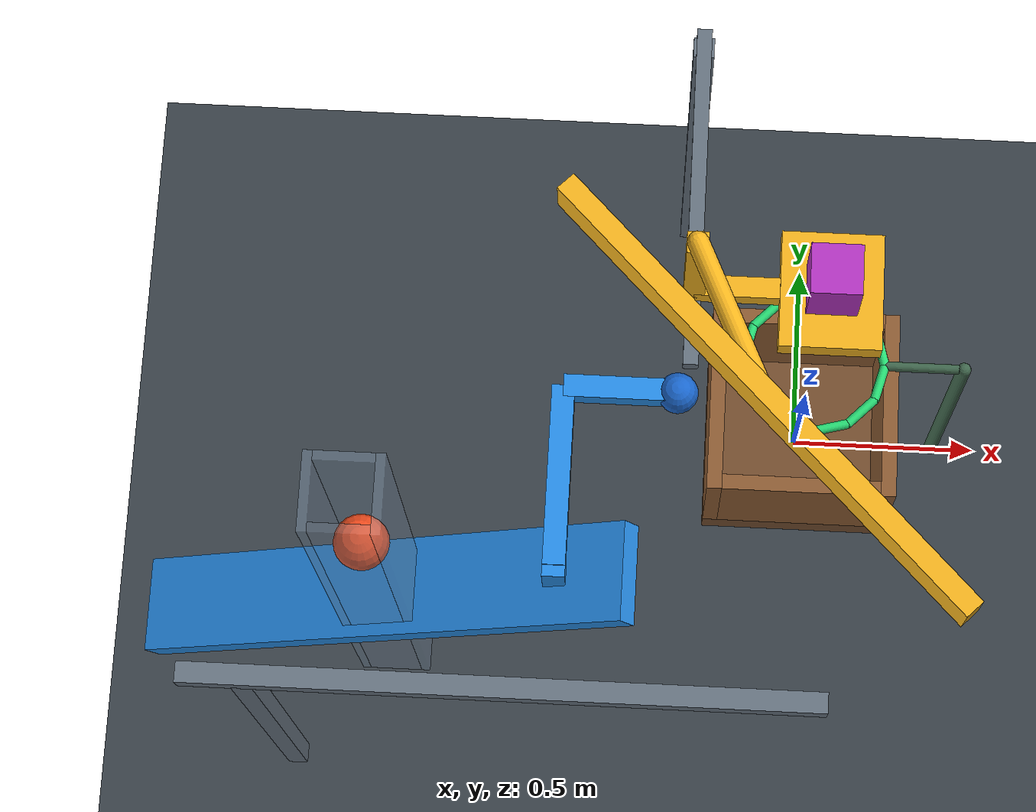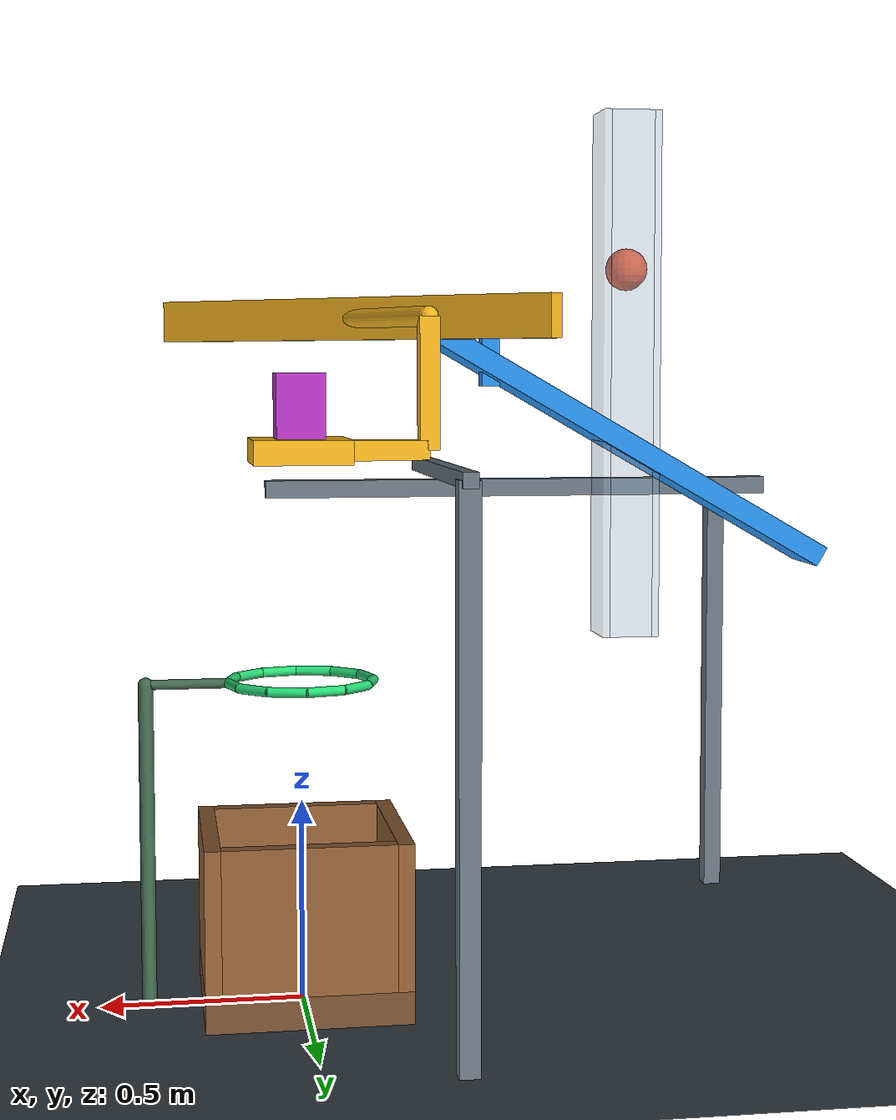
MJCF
<mujoco model="gravity_slide_release">
  <compiler angle="degree"/>
  <option timestep="0.002" gravity="0 0 -9.81" integrator="implicitfast" iterations="80" cone="elliptic"/>
  <size njmax="2000" nconmax="300"/>

  <visual>
    <headlight ambient="0.35 0.35 0.35" diffuse="0.7 0.7 0.7" specular="0.2 0.2 0.2"/>
  </visual>

  <worldbody>
    <light name="overhead" pos="-0.5 -1 4" dir="0 0 -1"/>
    <geom name="floor" type="plane" size="4 4 0.1" rgba="0.22 0.25 0.28 1" friction="0.8 0.01 0.002"/>

    <!-- The center falls exactly 0.4 m before touching the inclined ramp. -->
    <body name="ball" pos="-1 -0.75 1.853923048">
      <freejoint name="ball_free"/>
      <geom name="ball_sphere" type="sphere" size="0.06" mass="6" rgba="0.95 0.3 0.12 1" contype="1" conaffinity="3" condim="6" friction="0.02 0.02 0.005" solref="0.012 1"/>
    </body>

    <!-- These walls contact only the ball, not the translating ramp. -->
    <body name="ball_chute" pos="-1 -0.75 1.55">
      <geom name="ball_chute_left" type="box" pos="-0.072 0 0" size="0.01 0.082 0.75" rgba="0.55 0.65 0.75 0.35" contype="2" conaffinity="0" condim="6" friction="0.005 0.005 0.002"/>
      <geom name="ball_chute_right" type="box" pos="0.072 0 0" size="0.01 0.082 0.75" rgba="0.55 0.65 0.75 0.35" contype="2" conaffinity="0" condim="6" friction="0.005 0.005 0.002"/>
      <geom name="ball_chute_front" type="box" pos="0 -0.072 0" size="0.062 0.01 0.75" rgba="0.55 0.65 0.75 0.25" contype="2" conaffinity="0" condim="6" friction="0.005 0.005 0.002"/>
      <geom name="ball_chute_back" type="box" pos="0 0.072 0" size="0.062 0.01 0.75" rgba="0.55 0.65 0.75 0.35" contype="2" conaffinity="0" condim="6" friction="0.005 0.005 0.002"/>
    </body>

    <!-- Gravity on the confined ball drives this rising ramp toward +x. -->
    <body name="slider1" pos="-1 -0.75 1.35">
      <inertial pos="0 0 0" mass="1.4" diaginertia="0.10 0.12 0.08"/>
      <joint name="slider1_slide" type="slide" axis="1 0 0" limited="true" range="0 0.55" damping="7" frictionloss="0.15" armature="0.01" solreflimit="0.008 1"/>
      <geom name="slider1_ramp" type="box" size="0.65 0.11 0.03" quat="0.965925826 0 -0.258819045 0" rgba="0.15 0.55 0.9 1" condim="6" friction="0.015 0.015 0.005" solref="0.012 1"/>
      <geom name="slider1_crossarm" type="box" pos="0.40 0.20 0.35" size="0.025 0.20 0.025" rgba="0.15 0.55 0.9 1" contype="0" conaffinity="0"/>
      <geom name="slider1_pushrod" type="box" pos="0.525 0.40 0.35" size="0.125 0.025 0.025" rgba="0.15 0.55 0.9 1" contype="0" conaffinity="0"/>
      <geom name="slider1_riser" type="box" pos="0.40 0 0.27" size="0.025 0.025 0.10" rgba="0.15 0.55 0.9 1" contype="0" conaffinity="0"/>
      <geom name="slider1_pusher" type="sphere" pos="0.65 0.40 0.35" size="0.045" rgba="0.1 0.4 0.8 1" friction="0.01 0.001 0.001" solref="0.008 1"/>
    </body>

    <!-- The pusher crosses a 0.091 m travel gap, then meets the diagonal cam. -->
    <!-- The cam converts +x motion into +y support withdrawal. -->
    <body name="slider2" pos="0 0 1.37">
      <inertial pos="-0.15 -0.1 0.1" mass="0.8" diaginertia="0.04 0.04 0.05"/>
      <joint name="slider2_slide" type="slide" axis="0 1 0" limited="true" range="0 0.48" damping="3" frictionloss="0.08" armature="0.01" solreflimit="0.008 1"/>
      <geom name="slider2_support" type="box" size="0.12 0.14 0.03" rgba="0.95 0.7 0.12 1" condim="3" friction="0.001 0.001 0.001" solref="0.008 1"/>
      <geom name="slider2_cam" type="box" pos="-0.16 -0.35 0.33" size="0.65 0.025 0.055" quat="0.923879533 0 0 -0.382683432" rgba="0.95 0.7 0.12 1" friction="0.01 0.001 0.001" solref="0.008 1"/>
      <geom name="slider2_support_arm" type="box" pos="-0.21 0 0" size="0.11 0.025 0.025" rgba="0.95 0.7 0.12 1" contype="0" conaffinity="0"/>
      <geom name="slider2_riser" type="box" pos="-0.32 0 0.165" size="0.025 0.025 0.165" rgba="0.95 0.7 0.12 1" contype="0" conaffinity="0"/>
      <geom name="slider2_cam_arm" type="capsule" fromto="-0.32 0 0.33 -0.16 -0.35 0.33" size="0.025" rgba="0.95 0.7 0.12 1" contype="0" conaffinity="0"/>
    </body>

    <body name="block" pos="0 0 1.48">
      <freejoint name="block_free"/>
      <geom name="block_payload" type="box" size="0.06 0.06 0.08" mass="0.35" rgba="0.7 0.2 0.75 1" condim="6" friction="0.001 0.001 0.001" solref="0.01 1"/>
    </body>

    <body name="hoop" pos="0 0 0.8">
      <geom name="hoop_01" type="capsule" fromto="0.18 0 0 0.155885 0.09 0" size="0.012" rgba="0.15 0.85 0.45 1"/>
      <geom name="hoop_02" type="capsule" fromto="0.155885 0.09 0 0.09 0.155885 0" size="0.012" rgba="0.15 0.85 0.45 1"/>
      <geom name="hoop_03" type="capsule" fromto="0.09 0.155885 0 0 0.18 0" size="0.012" rgba="0.15 0.85 0.45 1"/>
      <geom name="hoop_04" type="capsule" fromto="0 0.18 0 -0.09 0.155885 0" size="0.012" rgba="0.15 0.85 0.45 1"/>
      <geom name="hoop_05" type="capsule" fromto="-0.09 0.155885 0 -0.155885 0.09 0" size="0.012" rgba="0.15 0.85 0.45 1"/>
      <geom name="hoop_06" type="capsule" fromto="-0.155885 0.09 0 -0.18 0 0" size="0.012" rgba="0.15 0.85 0.45 1"/>
      <geom name="hoop_07" type="capsule" fromto="-0.18 0 0 -0.155885 -0.09 0" size="0.012" rgba="0.15 0.85 0.45 1"/>
      <geom name="hoop_08" type="capsule" fromto="-0.155885 -0.09 0 -0.09 -0.155885 0" size="0.012" rgba="0.15 0.85 0.45 1"/>
      <geom name="hoop_09" type="capsule" fromto="-0.09 -0.155885 0 0 -0.18 0" size="0.012" rgba="0.15 0.85 0.45 1"/>
      <geom name="hoop_10" type="capsule" fromto="0 -0.18 0 0.09 -0.155885 0" size="0.012" rgba="0.15 0.85 0.45 1"/>
      <geom name="hoop_11" type="capsule" fromto="0.09 -0.155885 0 0.155885 -0.09 0" size="0.012" rgba="0.15 0.85 0.45 1"/>
      <geom name="hoop_12" type="capsule" fromto="0.155885 -0.09 0 0.18 0 0" size="0.012" rgba="0.15 0.85 0.45 1"/>
      <geom name="hoop_mount" type="capsule" fromto="0.18 0 0 0.38 0 0" size="0.012" rgba="0.25 0.4 0.3 1"/>
      <geom name="hoop_post" type="capsule" fromto="0.38 0 -0.78 0.38 0 0" size="0.018" rgba="0.25 0.4 0.3 1"/>
    </body>

    <body name="box" pos="0 0 0">
      <geom name="box_bottom" type="box" pos="0 0 0.04" size="0.25 0.25 0.04" rgba="0.45 0.3 0.18 1" condim="6" friction="0.7 0.02 0.005" solref="0.012 1"/>
      <geom name="box_left" type="box" pos="-0.23 0 0.26" size="0.02 0.25 0.18" rgba="0.55 0.36 0.2 1" condim="6" friction="0.7 0.02 0.005" solref="0.012 1"/>
      <geom name="box_right" type="box" pos="0.23 0 0.26" size="0.02 0.25 0.18" rgba="0.55 0.36 0.2 1" condim="6" friction="0.7 0.02 0.005" solref="0.012 1"/>
      <geom name="box_front" type="box" pos="0 -0.23 0.26" size="0.21 0.02 0.18" rgba="0.55 0.36 0.2 1" condim="6" friction="0.7 0.02 0.005" solref="0.012 1"/>
      <geom name="box_back" type="box" pos="0 0.23 0.26" size="0.21 0.02 0.18" rgba="0.55 0.36 0.2 1" condim="6" friction="0.7 0.02 0.005" solref="0.012 1"/>
    </body>

    <body name="guide_frame" pos="0 0 0">
      <geom name="guide_frame_slider1_rail" type="box" pos="-0.72 -0.94 1.22" size="0.75 0.025 0.025" rgba="0.4 0.45 0.5 1" contype="0" conaffinity="0"/>
      <geom name="guide_frame_slider1_post" type="box" pos="-1.32 -0.94 0.61" size="0.025 0.025 0.61" rgba="0.4 0.45 0.5 1" contype="0" conaffinity="0"/>
      <geom name="guide_frame_slider2_rail" type="box" pos="-0.32 0.24 1.33" size="0.018 0.42 0.018" rgba="0.4 0.45 0.5 1" contype="0" conaffinity="0"/>
      <geom name="guide_frame_slider2_post" type="box" pos="-0.32 0.62 0.665" size="0.025 0.025 0.665" rgba="0.4 0.45 0.5 1" contype="0" conaffinity="0"/>
    </body>
  </worldbody>

  <keyframe>
    <key name="start"/>
  </keyframe>
</mujoco>
